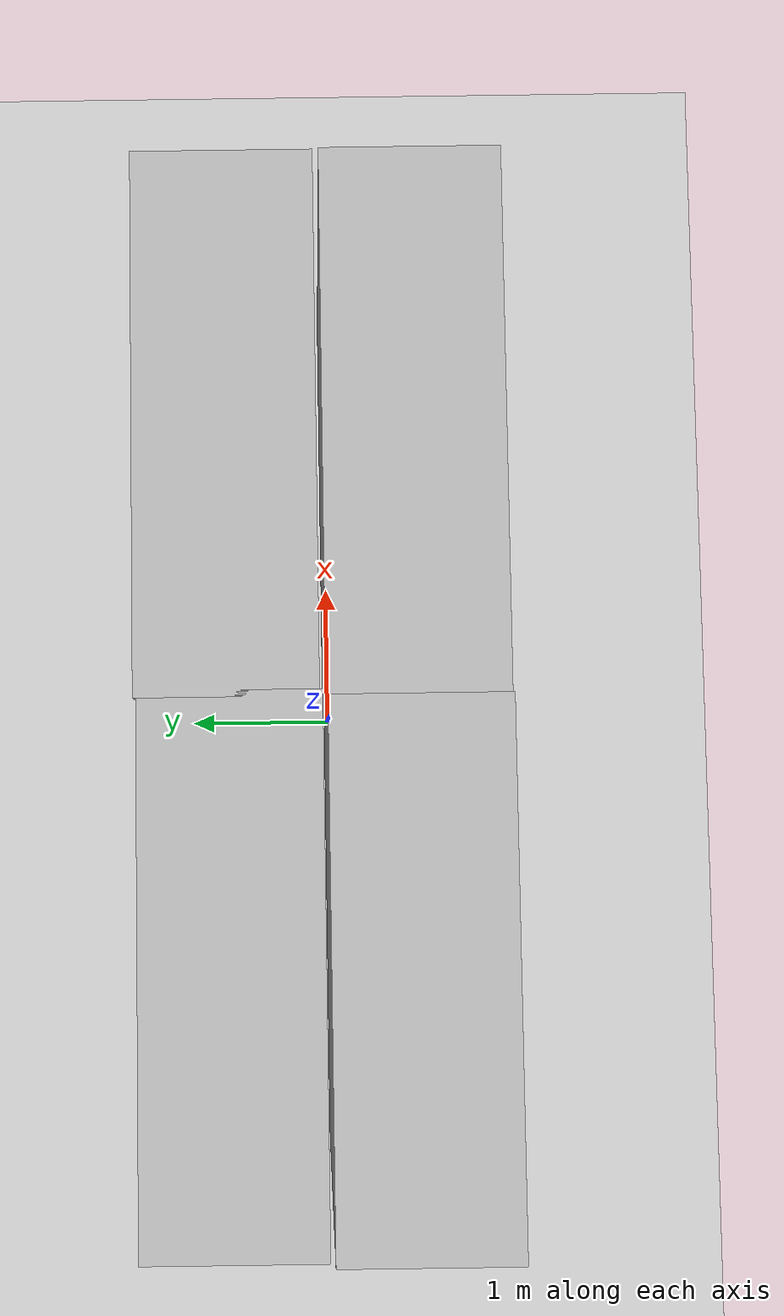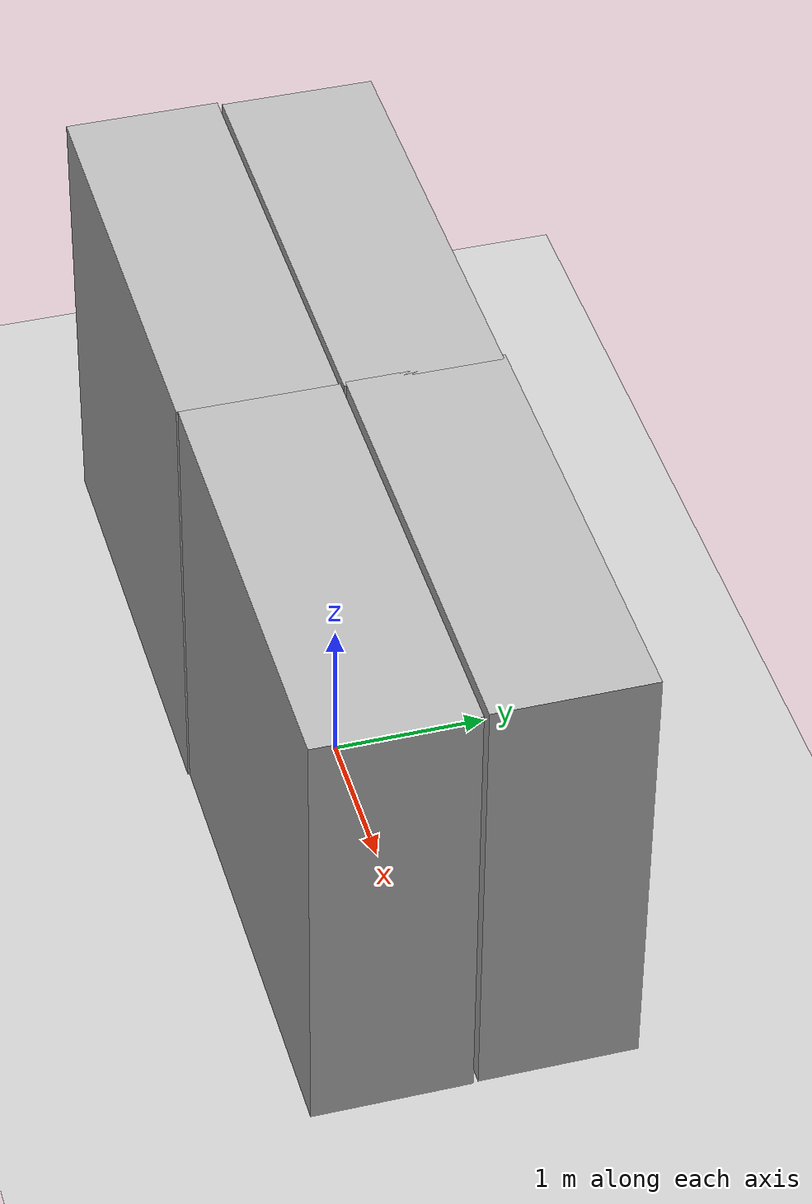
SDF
<sdf version="1.6">
 <world name="default">
  <scene><ambient>0.4 0.4 0.4 1</ambient><background>0.7 0.7 0.7 1</background><shadows>0</shadows></scene>
  <light name="sun" type="directional">
   <cast_shadows>0</cast_shadows>
   <pose>0 0 10 0 -0 0</pose>
   <diffuse>0.8 0.8 0.8 1</diffuse>
   <specular>0.2 0.2 0.2 1</specular>
   <attenuation>
    <range>1000</range>
    <constant>0.9</constant>
    <linear>0.01</linear>
    <quadratic>0.001</quadratic>
   </attenuation>
   <direction>-0.5 0.1 -0.9</direction>
  </light>
  <model name="ground_plane">
   <static>1</static>
   <link name="link">
    <collision name="collision">
     <geometry><plane><normal>0 0 1</normal><size>100 100</size></plane></geometry>
     <surface><friction><ode><mu>100</mu><mu2>50</mu2></ode></friction></surface>
    </collision>
    <visual name="visual">
     <cast_shadows>0</cast_shadows>
     <geometry><plane><normal>0 0 1</normal><size>100 100</size></plane></geometry>
     <material>
      <script><uri>file://media/materials/scripts/gazebo.material</uri><name>Gazebo/Grey</name></script>
     </material>
    </visual>
   </link>
  </model>
  <physics name="default_physics" default="0" type="ode">
   <real_time_update_rate>1000</real_time_update_rate>
   <max_step_size>0.001</max_step_size>
   <real_time_factor>1</real_time_factor>
   <ode>
    <solver>
     <type>quick</type>
     <iters>150</iters>
     <precon_iters>0</precon_iters>
     <sor>1.4</sor>
     <use_dynamic_moi_rescaling>1</use_dynamic_moi_rescaling>
    </solver>
    <constraints>
     <cfm>1e-05</cfm>
     <erp>0.2</erp>
     <contact_max_correcting_vel>2000</contact_max_correcting_vel>
     <contact_surface_layer>0.01</contact_surface_layer>
    </constraints>
   </ode>
  </physics>
  <gravity>0 0 -9.8</gravity>
  <magnetic_field>6e-06 2.3e-05 -4.2e-05</magnetic_field>
  <atmosphere type="adiabatic"/>
  <spherical_coordinates>
   <surface_model>EARTH_WGS84</surface_model>
   <latitude_deg>0</latitude_deg>
   <longitude_deg>0</longitude_deg>
   <elevation>0</elevation>
   <heading_deg>0</heading_deg>
  </spherical_coordinates>
  <model name="brick_box_3x1x3">
   <static>1</static>
   <link name="chassis">
    <pose>0 0 1.5 0 -0 0</pose>
    <collision name="collision"><geometry><box><size>3 1 3</size></box></geometry></collision>
    <visual name="visual">
     <geometry><mesh><uri>model://brick_box_3x1x3/meshes/simple_box.dae</uri><scale>3 1 3</scale></mesh></geometry>
     <material>
      <script>
       <uri>model://brick_box_3x1x3/materials/scripts</uri>
       <uri>model://brick_box_3x1x3/materials/textures</uri>
       <name>BrickBox/Diffuse</name>
      </script>
     </material>
    </visual>
   </link>
   <pose>1.48746 -0.461585 0 0 -0 0</pose>
  </model>
  <model name="brick_box_3x1x3_clone">
   <static>1</static>
   <link name="chassis">
    <pose>0 0 1.5 0 -0 0</pose>
    <collision name="collision"><geometry><box><size>3 1 3</size></box></geometry></collision>
    <visual name="visual">
     <geometry><mesh><uri>model://brick_box_3x1x3/meshes/simple_box.dae</uri><scale>3 1 3</scale></mesh></geometry>
     <material>
      <script>
       <uri>model://brick_box_3x1x3/materials/scripts</uri>
       <uri>model://brick_box_3x1x3/materials/textures</uri>
       <name>BrickBox/Diffuse</name>
      </script>
     </material>
    </visual>
   </link>
   <pose>-1.51109 -0.472954 0 0 -0 0</pose>
  </model>
  <model name="brick_box_3x1x3_clone_0">
   <static>1</static>
   <link name="chassis">
    <pose>0 0 1.5 0 -0 0</pose>
    <collision name="collision"><geometry><box><size>3 1 3</size></box></geometry></collision>
    <visual name="visual">
     <geometry><mesh><uri>model://brick_box_3x1x3/meshes/simple_box.dae</uri><scale>3 1 3</scale></mesh></geometry>
     <material>
      <script>
       <uri>model://brick_box_3x1x3/materials/scripts</uri>
       <uri>model://brick_box_3x1x3/materials/textures</uri>
       <name>BrickBox/Diffuse</name>
      </script>
     </material>
    </visual>
   </link>
   <pose>1.47945 0.570988 0 0 -0 0</pose>
  </model>
  <model name="brick_box_3x1x3_clone_clone">
   <static>1</static>
   <link name="chassis">
    <pose>0 0 1.5 0 -0 0</pose>
    <collision name="collision"><geometry><box><size>3 1 3</size></box></geometry></collision>
    <visual name="visual">
     <geometry><mesh><uri>model://brick_box_3x1x3/meshes/simple_box.dae</uri><scale>3 1 3</scale></mesh></geometry>
     <material>
      <script>
       <uri>model://brick_box_3x1x3/materials/scripts</uri>
       <uri>model://brick_box_3x1x3/materials/textures</uri>
       <name>BrickBox/Diffuse</name>
      </script>
     </material>
    </visual>
   </link>
   <pose>-1.48319 0.553715 0 0 -0 0</pose>
  </model>
  <light name="user_spot_light_0" type="spot">
   <pose>0.020331 6.99998 1 0 -0 0</pose>
   <diffuse>0.5 0.5 0.5 1</diffuse>
   <specular>0.1 0.1 0.1 1</specular>
   <direction>0 0 -1</direction>
   <attenuation>
    <range>20</range>
    <constant>0.5</constant>
    <linear>0.01</linear>
    <quadratic>0.001</quadratic>
   </attenuation>
   <cast_shadows>0</cast_shadows>
   <spot><inner_angle>0.6</inner_angle><outer_angle>1</outer_angle><falloff>1</falloff></spot>
  </light>
 </world>
</sdf>
